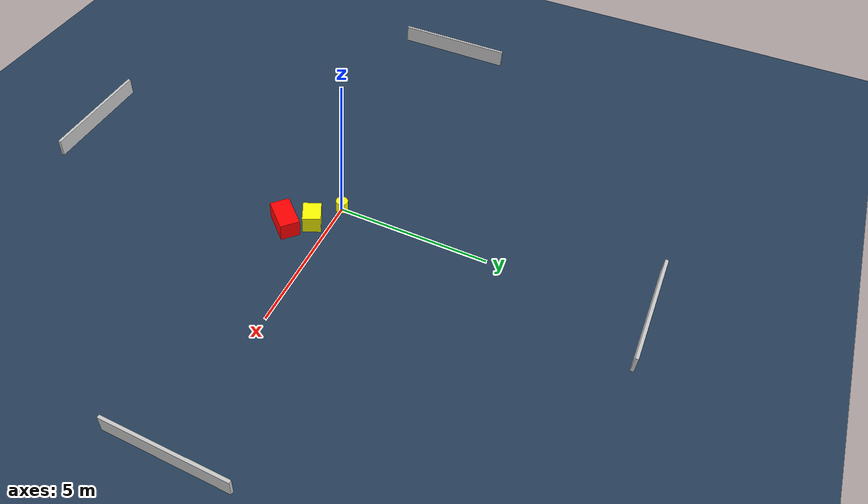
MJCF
<?xml version="1.0" ?>
<mujoco model="generated_environment">
  <option timestep="0.01" integrator="RK4" cone="elliptic"/>
  <default>
    <geom density="1"/>
  </default>
  <asset>
    <texture builtin="gradient" height="3072" name="skybox" rgb1="0.3 0.5 0.7" rgb2="0 0 0" type="skybox" width="512"/>
    <texture builtin="checker" height="300" name="groundplane" rgb1="0.2 0.3 0.4" rgb2="0.1 0.2 0.3" type="2d" width="300"/>
    <material name="groundplane" reflectance="0.2" texrepeat="5 5" texture="groundplane"/>
  </asset>
  <worldbody>
    <light dir="0 0 -1" directional="true" pos="0 0 1.5"/>
    <geom condim="3" friction="0.5 0.005 0.001" material="groundplane" name="floor" pos="0 0 0" size="0 0 0.05" type="plane"/>
    <body name="walls">
      <geom name="wall_1" condim="4" pos="-10.0 0.0 0.3" rgba="0.800000011920929 0.800000011920929 0.800000011920929 1.0" size="0.05 2.0 0.3" type="box"/>
      <geom name="wall_2" condim="4" pos="10.0 0.0 0.3" rgba="0.800000011920929 0.800000011920929 0.800000011920929 1.0" size="0.05 2.0 0.3" type="box"/>
      <geom name="wall_3" condim="4" pos="0.0 -10.0 0.3" rgba="0.800000011920929 0.800000011920929 0.800000011920929 1.0" size="2.0 0.05 0.3" type="box"/>
      <geom name="wall_4" condim="4" pos="0.0 10.0 0.3" rgba="0.800000011920929 0.800000011920929 0.800000011920929 1.0" size="2.0 0.05 0.3" type="box"/>
    </body>
    <body name="robot">
      <joint name="joint_x" type="slide" pos="0 0 0" axis="1 0 0"/>
      <joint name="joint_y" type="slide" pos="0 0 0" axis="0 1 0"/>
      <geom name="robot" type="cylinder" pos="0.0 0.0 0.2" size="0.2 0.2 0.0" mass="5.0" friction="1.0 0.005 0.0001" condim="4" rgba="1.0 1.0 0.0 1.0"/>
    </body>
    <body name="obstacle_1_movable">
      <geom name="obstacle_1_movable" condim="4" pos="1.0135967161011408 -0.5689891157778275 0.3" euler="0 0 295.33933349736503" friction="0.0 0.005 0.001" rgba="1.0 1.0 0.0 1.0" size="0.29551475076522193 0.3601830739437931 0.3" type="box" mass="0.1"/>
      <joint type="free"/>
    </body>
    <body name="obstacle_2_static">
      <geom name="obstacle_2_static" condim="4" pos="1.4620309538291825 -1.314161829305039 0.3" euler="0 0 316.9809401152429" friction="0.0 0.005 0.001" rgba="1.0 0.0 0.0 1.0" size="0.32444179740806867 0.5570838743780169 0.3" type="box"/>
    </body>
  </worldbody>
  <actuator>
    <motor name="actuator_x" joint="joint_x" gear="1" ctrlrange="-1 1"/>
    <motor name="actuator_y" joint="joint_y" gear="1" ctrlrange="-1 1"/>
  </actuator>
</mujoco>
